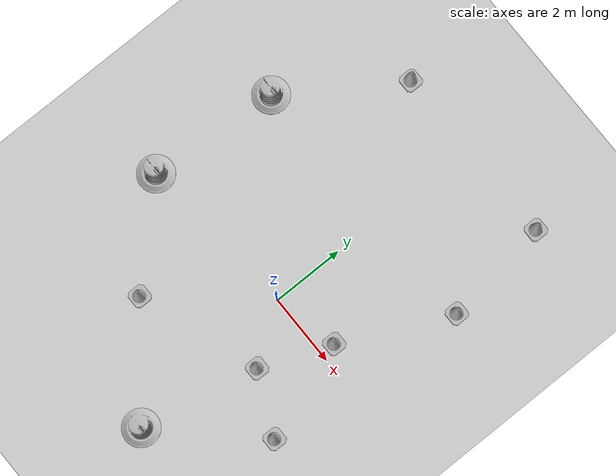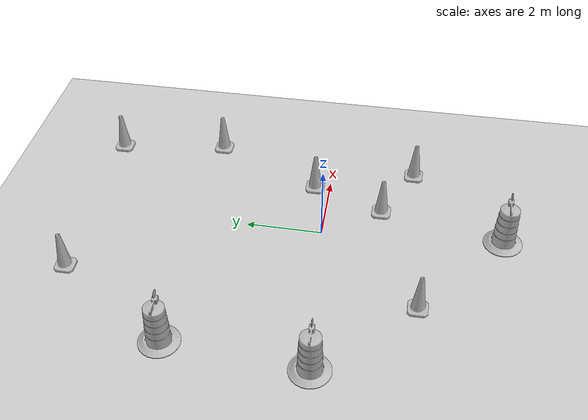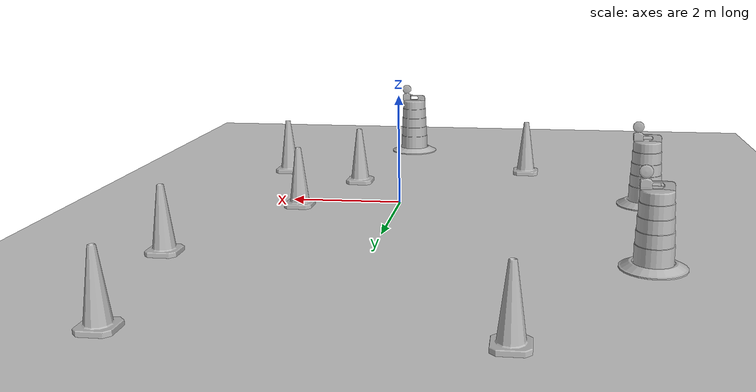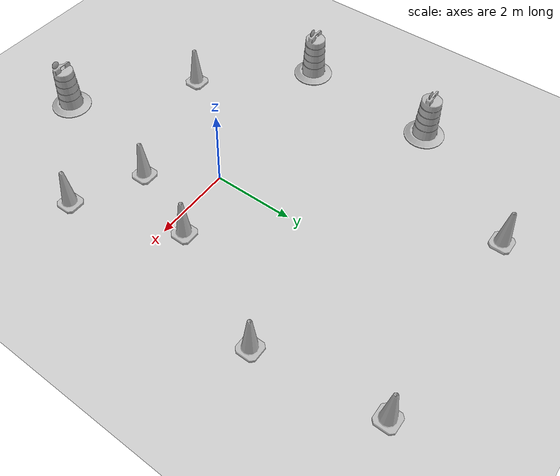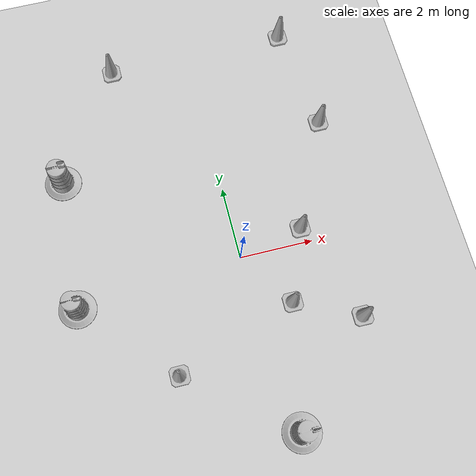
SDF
<sdf version="1.7">
 <world name="default">
  <light name="sun" type="directional">
   <pose>0 0 10 0 -0 0</pose>
   <diffuse>0.8 0.8 0.8 1</diffuse>
   <specular>0.2 0.2 0.2 1</specular>
   <attenuation>
    <range>1000</range>
    <constant>0.9</constant>
    <linear>0.01</linear>
    <quadratic>0.001</quadratic>
   </attenuation>
   <direction>-0.5 0.1 -0.9</direction>
   <spot><inner_angle>0</inner_angle><outer_angle>0</outer_angle><falloff>0</falloff></spot>
  </light>
  <model name="ground_plane">
   <static>1</static>
   <link name="link">
    <collision name="collision">
     <geometry><plane><normal>0 0 1</normal><size>100 100</size></plane></geometry>
     <surface>
      <contact><collide_bitmask>65535</collide_bitmask></contact>
      <friction><ode><mu>100</mu><mu2>50</mu2></ode></friction>
     </surface>
    </collision>
    <visual name="visual">
     <cast_shadows>0</cast_shadows>
     <geometry><plane><normal>0 0 1</normal><size>100 100</size></plane></geometry>
     <material>
      <script><uri>file://media/materials/scripts/gazebo.material</uri><name>Gazebo/Grey</name></script>
     </material>
    </visual>
   </link>
  </model>
  <gravity>0 0 -9.8</gravity>
  <magnetic_field>6e-06 2.3e-05 -4.2e-05</magnetic_field>
  <atmosphere type="adiabatic"/>
  <physics type="ode">
   <max_step_size>0.001</max_step_size>
   <real_time_factor>1</real_time_factor>
   <real_time_update_rate>1000</real_time_update_rate>
  </physics>
  <scene><ambient>0.4 0.4 0.4 1</ambient><background>0.7 0.7 0.7 1</background><shadows>1</shadows></scene>
  <audio><device>default</device></audio>
  <spherical_coordinates>
   <surface_model>EARTH_WGS84</surface_model>
   <latitude_deg>0</latitude_deg>
   <longitude_deg>0</longitude_deg>
   <elevation>0</elevation>
   <heading_deg>0</heading_deg>
  </spherical_coordinates>
  <model name="Construction Cone">
   <link name="link">
    <collision name="collision">
     <geometry>
      <mesh><scale>10 10 10</scale><uri>model://construction_cone/meshes/construction_cone.dae</uri></mesh>
     </geometry>
    </collision>
    <visual name="visual">
     <geometry>
      <mesh><scale>10 10 10</scale><uri>model://construction_cone/meshes/construction_cone.dae</uri></mesh>
     </geometry>
    </visual>
    <inertial>
     <inertia><ixx>1</ixx><ixy>0</ixy><ixz>0</ixz><iyy>1</iyy><iyz>0</iyz><izz>1</izz></inertia>
     <mass>1</mass>
    </inertial>
   </link>
   <pose>-2.28255 -2.6602 -8e-06 1e-06 -0 0</pose>
  </model>
  <model name="Construction Cone_0">
   <link name="link">
    <collision name="collision">
     <geometry>
      <mesh><scale>10 10 10</scale><uri>model://construction_cone/meshes/construction_cone.dae</uri></mesh>
     </geometry>
    </collision>
    <visual name="visual">
     <geometry>
      <mesh><scale>10 10 10</scale><uri>model://construction_cone/meshes/construction_cone.dae</uri></mesh>
     </geometry>
    </visual>
    <inertial>
     <inertia><ixx>1</ixx><ixy>0</ixy><ixz>0</ixz><iyy>1</iyy><iyz>0</iyz><izz>1</izz></inertia>
     <mass>1</mass>
    </inertial>
   </link>
   <pose>-2.25761 6.23489 0 -0 -0 -0</pose>
  </model>
  <model name="Construction Cone_1">
   <link name="link">
    <collision name="collision">
     <geometry>
      <mesh><scale>10 10 10</scale><uri>model://construction_cone/meshes/construction_cone.dae</uri></mesh>
     </geometry>
    </collision>
    <visual name="visual">
     <geometry>
      <mesh><scale>10 10 10</scale><uri>model://construction_cone/meshes/construction_cone.dae</uri></mesh>
     </geometry>
    </visual>
    <inertial>
     <inertia><ixx>1</ixx><ixy>0</ixy><ixz>0</ixz><iyy>1</iyy><iyz>0</iyz><izz>1</izz></inertia>
     <mass>1</mass>
    </inertial>
   </link>
   <pose>2.75665 6.26468 -0 0 -0 0</pose>
  </model>
  <model name="Construction Cone_2">
   <link name="link">
    <collision name="collision">
     <geometry>
      <mesh><scale>10 10 10</scale><uri>model://construction_cone/meshes/construction_cone.dae</uri></mesh>
     </geometry>
    </collision>
    <visual name="visual">
     <geometry>
      <mesh><scale>10 10 10</scale><uri>model://construction_cone/meshes/construction_cone.dae</uri></mesh>
     </geometry>
    </visual>
    <inertial>
     <inertia><ixx>1</ixx><ixy>0</ixy><ixz>0</ixz><iyy>1</iyy><iyz>0</iyz><izz>1</izz></inertia>
     <mass>1</mass>
    </inertial>
   </link>
   <pose>2.71428 -2.27747 -0 0 -1e-06 0</pose>
  </model>
  <model name="Construction Barrel">
   <link name="link">
    <inertial>
     <pose>0 0 0.4 0 -0 0</pose>
     <mass>500</mass>
     <inertia><ixx>51.2096</ixx><iyy>51.2096</iyy><izz>25</izz><ixy>0</ixy><ixz>0</ixz><iyz>0</iyz></inertia>
    </inertial>
    <collision name="collision">
     <geometry><mesh><uri>model://construction_barrel/meshes/construction_barrel.dae</uri></mesh></geometry>
    </collision>
    <visual name="visual">
     <geometry><mesh><uri>model://construction_barrel/meshes/construction_barrel.dae</uri></mesh></geometry>
    </visual>
   </link>
   <pose>-4.23496 3.20969 0 0 -0 -1.3e-05</pose>
  </model>
  <model name="Construction Barrel_0">
   <link name="link">
    <inertial>
     <pose>0 0 0.4 0 -0 0</pose>
     <mass>500</mass>
     <inertia><ixx>51.2096</ixx><iyy>51.2096</iyy><izz>25</izz><ixy>0</ixy><ixz>0</ixz><iyz>0</iyz></inertia>
    </inertial>
    <collision name="collision">
     <geometry><mesh><uri>model://construction_barrel/meshes/construction_barrel.dae</uri></mesh></geometry>
    </collision>
    <visual name="visual">
     <geometry><mesh><uri>model://construction_barrel/meshes/construction_barrel.dae</uri></mesh></geometry>
    </visual>
   </link>
   <pose>-4.4969 -0.363704 0 0 0 -1e-05</pose>
  </model>
  <model name="Construction Barrel_1">
   <link name="link">
    <inertial>
     <pose>0 0 0.4 0 -0 0</pose>
     <mass>500</mass>
     <inertia><ixx>51.2096</ixx><iyy>51.2096</iyy><izz>25</izz><ixy>0</ixy><ixz>0</ixz><iyz>0</iyz></inertia>
    </inertial>
    <collision name="collision">
     <geometry><mesh><uri>model://construction_barrel/meshes/construction_barrel.dae</uri></mesh></geometry>
    </collision>
    <visual name="visual">
     <geometry><mesh><uri>model://construction_barrel/meshes/construction_barrel.dae</uri></mesh></geometry>
    </visual>
   </link>
   <pose>0.362216 -4.72635 -1e-06 3e-06 -2e-06 -9e-06</pose>
  </model>
  <model name="Construction Cone_3">
   <link name="link">
    <collision name="collision">
     <geometry>
      <mesh><scale>10 10 10</scale><uri>model://construction_cone/meshes/construction_cone.dae</uri></mesh>
     </geometry>
    </collision>
    <visual name="visual">
     <geometry>
      <mesh><scale>10 10 10</scale><uri>model://construction_cone/meshes/construction_cone.dae</uri></mesh>
     </geometry>
    </visual>
    <inertial>
     <inertia><ixx>1</ixx><ixy>0</ixy><ixz>0</ixz><iyy>1</iyy><iyz>0</iyz><izz>1</izz></inertia>
     <mass>1</mass>
    </inertial>
   </link>
   <pose>1.0353 -1.49568 -0 0 -0 0</pose>
  </model>
  <model name="Construction Cone_4">
   <link name="link">
    <collision name="collision">
     <geometry>
      <mesh><scale>10 10 10</scale><uri>model://construction_cone/meshes/construction_cone.dae</uri></mesh>
     </geometry>
    </collision>
    <visual name="visual">
     <geometry>
      <mesh><scale>10 10 10</scale><uri>model://construction_cone/meshes/construction_cone.dae</uri></mesh>
     </geometry>
    </visual>
    <inertial>
     <inertia><ixx>1</ixx><ixy>0</ixy><ixz>0</ixz><iyy>1</iyy><iyz>0</iyz><izz>1</izz></inertia>
     <mass>1</mass>
    </inertial>
   </link>
   <pose>1.78488 0.418753 -0 0 -0 0</pose>
  </model>
  <model name="Construction Cone_5">
   <link name="link">
    <collision name="collision">
     <geometry>
      <mesh><scale>10 10 10</scale><uri>model://construction_cone/meshes/construction_cone.dae</uri></mesh>
     </geometry>
    </collision>
    <visual name="visual">
     <geometry>
      <mesh><scale>10 10 10</scale><uri>model://construction_cone/meshes/construction_cone.dae</uri></mesh>
     </geometry>
    </visual>
    <inertial>
     <inertia><ixx>1</ixx><ixy>0</ixy><ixz>0</ixz><iyy>1</iyy><iyz>0</iyz><izz>1</izz></inertia>
     <mass>1</mass>
    </inertial>
   </link>
   <pose>3.14689 3.33101 -0 0 -0 0</pose>
  </model>
 </world>
</sdf>
